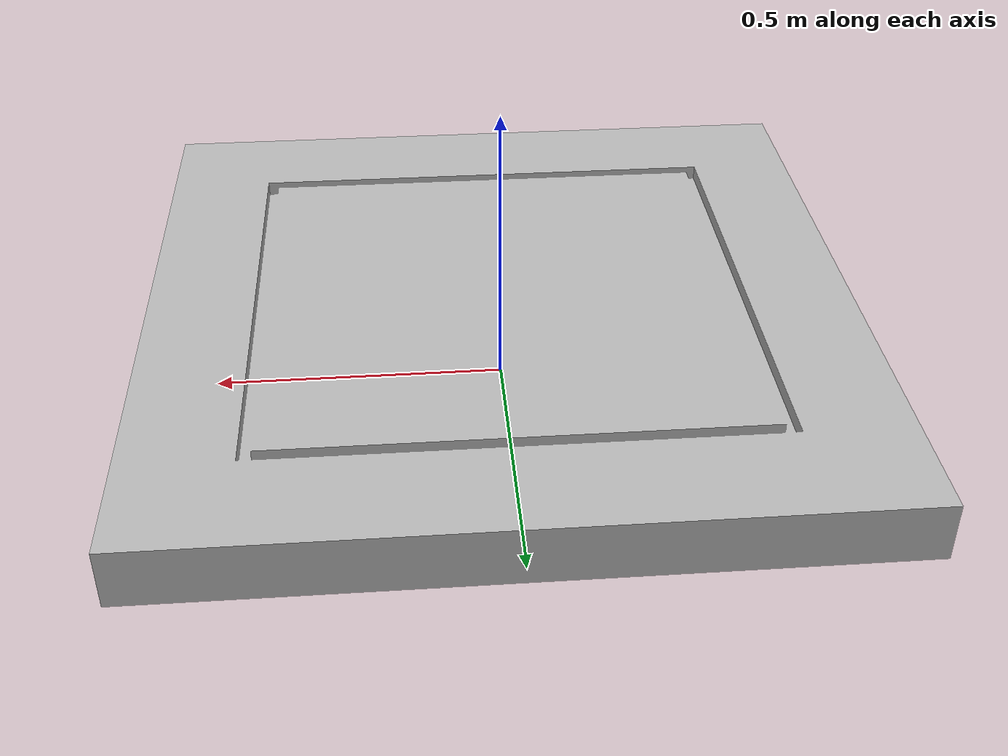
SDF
<?xml version='1.0'?>
<sdf version='1.6'>
  <model name='uav_base'>
    <pose frame=''>0 0 0.07 0 0 0</pose>
    <self_collide>false</self_collide>
    <!-- BASE_LINK FRAME -->
    <link name='uav_base_base'>
      <pose frame=''>0 0 0 0 0 0</pose>

      <visual name='uav_base_visual'>
        <pose frame=''>0 0 0 1.5708 0 0</pose>
        <geometry>
          <mesh>
            <scale>1 1 1</scale>
            <uri>model://uav_base/meshes/uav_base.obj</uri>
          </mesh>
        </geometry>
      </visual>

      <collision name='uav_base_collision'>
        <pose frame=''>0 0 0 0 0 0</pose>
        <geometry>
          <box>
            <size>0.5 0.5 0.2</size>
          </box>
        </geometry>
      </collision>
    </link>
    <static>true</static>
  </model>
</sdf>
